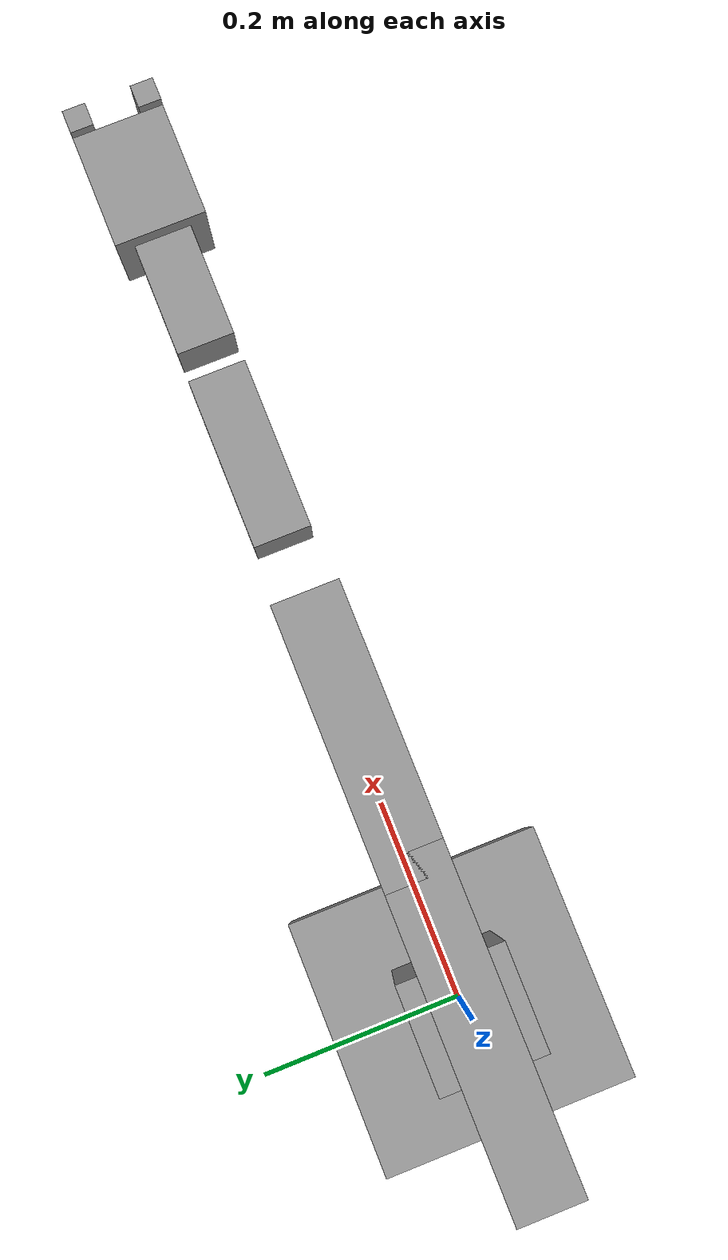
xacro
<?xml version="1.0"?>
<robot name="robot_debug" xmlns:xacro="http://www.ros.org/wiki/xacro">

  <material name="gray">
    <color rgba="0.6 0.6 0.6 1.0"/>
  </material>

  <xacro:macro name="box_link" params="name size mass">
    <link name="${name}">
      <visual>
        <geometry>
          <box size="${size}"/>
        </geometry>
        <material name="gray"/>
      </visual>

      <collision>
        <geometry>
          <box size="${size}"/>
        </geometry>
      </collision>

      <inertial>
        <origin xyz="0 0 0" rpy="0 0 0"/>
        <mass value="${mass}"/>
        <inertia ixx="0.01" ixy="0" ixz="0" iyy="0.01" iyz="0" izz="0.01"/>
      </inertial>
    </link>
  </xacro:macro>

  <xacro:box_link name="base_link" size="0.25 0.25 0.08" mass="2.0"/>
  <xacro:box_link name="link_1" size="0.10 0.10 0.20" mass="1.0"/>
  <xacro:box_link name="link_2" size="0.30 0.06 0.06" mass="1.0"/>
  <xacro:box_link name="link_3" size="0.25 0.06 0.06" mass="1.0"/>
  <xacro:box_link name="link_4" size="0.15 0.05 0.05" mass="0.8"/>
  <xacro:box_link name="link_5" size="0.10 0.05 0.05" mass="0.8"/>
  <xacro:box_link name="link_6" size="0.10 0.08 0.08" mass="0.5"/>
  <xacro:box_link name="left_finger" size="0.02 0.02 0.10" mass="0.1"/>
  <xacro:box_link name="right_finger" size="0.02 0.02 0.10" mass="0.1"/>
  <link name="tool0"/>

  <joint name="joint_1" type="revolute">
    <parent link="base_link"/>
    <child link="link_1"/>
    <origin xyz="0 0 0.10" rpy="0 0 0"/>
    <axis xyz="0 0 1"/>
    <limit lower="-3.14" upper="3.14" effort="30" velocity="1.0"/>
  </joint>

  <joint name="joint_2" type="revolute">
    <parent link="link_1"/>
    <child link="link_2"/>
    <origin xyz="0 0 0.15" rpy="0 0 0"/>
    <axis xyz="0 1 0"/>
    <limit lower="-2.5" upper="2.5" effort="30" velocity="1.0"/>
  </joint>

  <joint name="joint_3" type="revolute">
    <parent link="link_2"/>
    <child link="link_3"/>
    <origin xyz="0.25 0 0" rpy="0 0 0"/>
    <axis xyz="0 1 0"/>
    <limit lower="-2.5" upper="2.5" effort="30" velocity="1.0"/>
  </joint>

  <joint name="joint_4" type="revolute">
    <parent link="link_3"/>
    <child link="link_4"/>
    <origin xyz="0.25 0 0" rpy="0 0 0"/>
    <axis xyz="1 0 0"/>
    <limit lower="-3.14" upper="3.14" effort="20" velocity="1.0"/>
  </joint>

  <joint name="joint_5" type="revolute">
    <parent link="link_4"/>
    <child link="link_5"/>
    <origin xyz="0.15 0 0" rpy="0 0 0"/>
    <axis xyz="0 1 0"/>
    <limit lower="-3.14" upper="3.14" effort="20" velocity="1.0"/>
  </joint>

  <joint name="joint_6" type="revolute">
    <parent link="link_5"/>
    <child link="link_6"/>
    <origin xyz="0.10 0 0" rpy="0 0 0"/>
    <axis xyz="1 0 0"/>
    <limit lower="-3.14" upper="3.14" effort="10" velocity="1.0"/>
  </joint>

  <joint name="left_finger_fixed_joint" type="fixed">
    <parent link="link_6"/>
    <child link="left_finger"/>
    <origin xyz="0.06 0.03 0" rpy="0 0 0"/>
  </joint>

  <joint name="right_finger_fixed_joint" type="fixed">
    <parent link="link_6"/>
    <child link="right_finger"/>
    <origin xyz="0.06 -0.03 0" rpy="0 0 0"/>
  </joint>

  <joint name="tool0_fixed_joint" type="fixed">
    <parent link="link_6"/>
    <child link="tool0"/>
    <origin xyz="0.10 0 0" rpy="0 0 0"/>
  </joint>

</robot>
